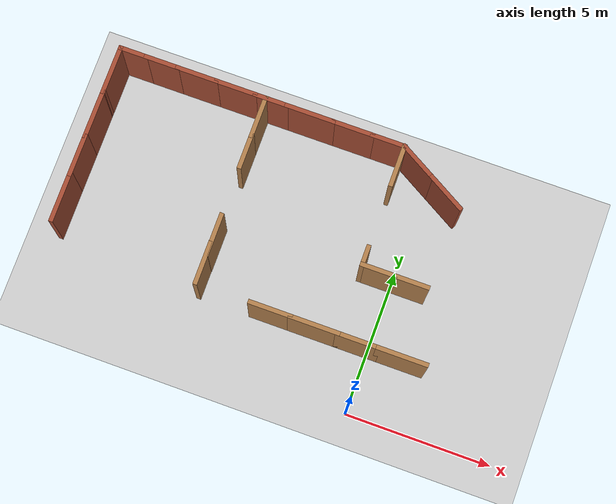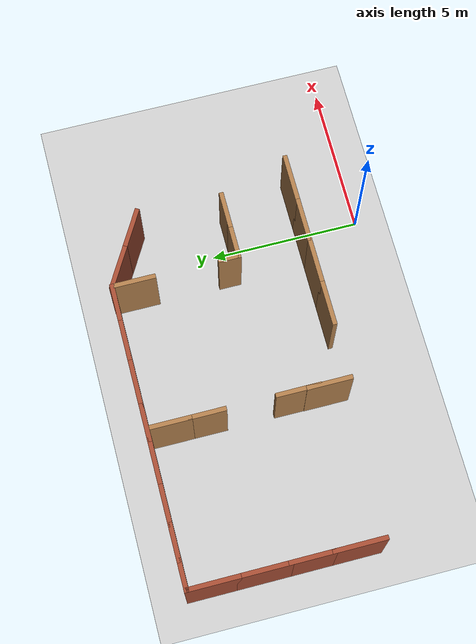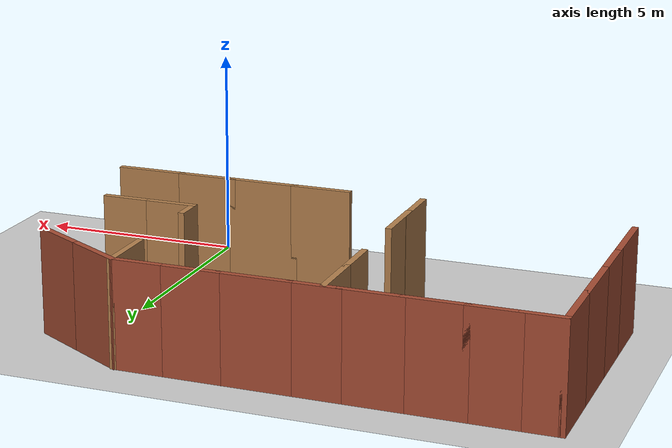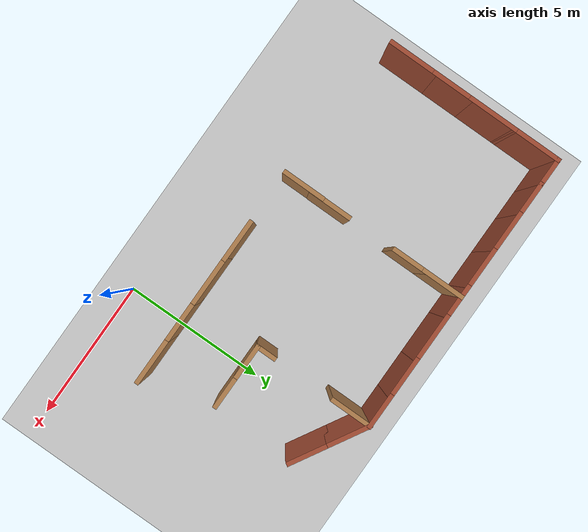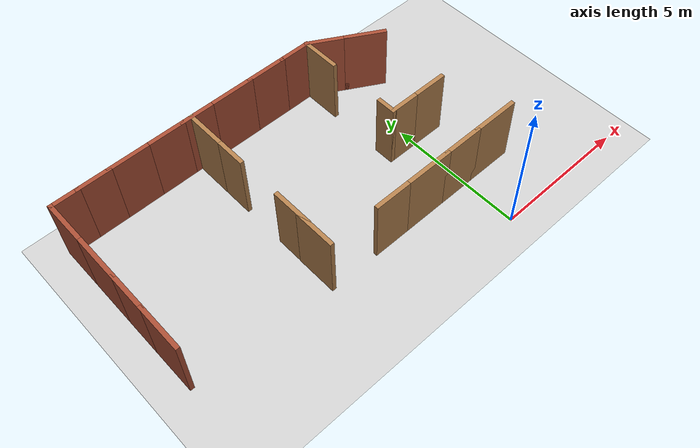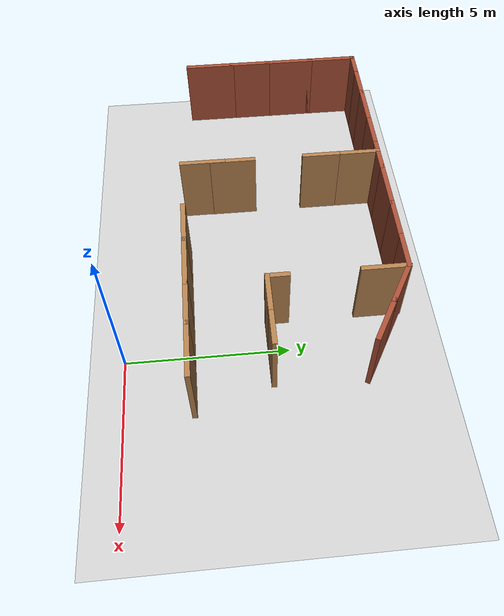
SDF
<sdf version="1.7">
 <world name="default">
  <model name="ground_plane">
   <static>1</static>
   <link name="link">
    <collision name="collision">
     <geometry><plane><normal>0 0 1</normal><size>100 100</size></plane></geometry>
     <surface>
      <contact><collide_bitmask>65535</collide_bitmask></contact>
      <friction><ode><mu>100</mu><mu2>50</mu2></ode></friction>
     </surface>
    </collision>
    <visual name="visual">
     <cast_shadows>0</cast_shadows>
     <geometry><plane><normal>0 0 1</normal><size>100 100</size></plane></geometry>
     <material>
      <script><uri>file://media/materials/scripts/gazebo.material</uri><name>Gazebo/Grey</name></script>
     </material>
    </visual>
   </link>
  </model>
  <model name="Building">
   <link name="Wall_102">
    <pose>-6.17365 7.40796 0 0 0 -1.5708</pose>
    <visual name="Wall_102_Visual">
     <pose>0 0 1.25 0 -0 0</pose>
     <geometry><box><size>1.5 0.15 2.5</size></box></geometry>
     <material>
      <script><uri>file://media/materials/scripts/gazebo.material</uri><name>Gazebo/Wood</name></script>
      <ambient>1 1 1 1</ambient>
      <shader type="pixel"/>
     </material>
     <meta><layer>0</layer></meta>
    </visual>
    <collision name="Wall_102_Collision">
     <pose>0 0 1.25 0 -0 0</pose>
     <geometry><box><size>1.5 0.15 2.5</size></box></geometry>
     <surface>
      <friction>
       <ode><mu>1</mu><mu2>1</mu2><fdir1>0 0 0</fdir1><slip1>0</slip1><slip2>0</slip2></ode>
       <torsional>
        <coefficient>1</coefficient>
        <patch_radius>0</patch_radius>
        <surface_radius>0</surface_radius>
        <use_patch_radius>1</use_patch_radius>
        <ode><slip>0</slip></ode>
       </torsional>
      </friction>
      <bounce><restitution_coefficient>0</restitution_coefficient><threshold>1e+06</threshold></bounce>
      <contact>
       <collide_without_contact>0</collide_without_contact>
       <collide_without_contact_bitmask>1</collide_without_contact_bitmask>
       <collide_bitmask>1</collide_bitmask>
       <ode>
        <soft_cfm>0</soft_cfm>
        <soft_erp>0.2</soft_erp>
        <kp>1e+13</kp>
        <kd>1</kd>
        <max_vel>0.01</max_vel>
        <min_depth>0</min_depth>
       </ode>
       <bullet>
        <split_impulse>1</split_impulse>
        <split_impulse_penetration_threshold>-0.01</split_impulse_penetration_threshold>
        <soft_cfm>0</soft_cfm>
        <soft_erp>0.2</soft_erp>
        <kp>1e+13</kp>
        <kd>1</kd>
       </bullet>
      </contact>
     </surface>
    </collision>
   </link>
   <link name="Wall_103">
    <pose>-6.17365 6.18296 0 0 0 -1.5708</pose>
    <visual name="Wall_103_Visual">
     <pose>0 0 1.25 0 -0 0</pose>
     <geometry><box><size>1.25 0.15 2.5</size></box></geometry>
     <material>
      <script><uri>file://media/materials/scripts/gazebo.material</uri><name>Gazebo/Wood</name></script>
      <ambient>1 1 1 1</ambient>
      <shader type="pixel"/>
     </material>
     <meta><layer>0</layer></meta>
    </visual>
    <collision name="Wall_103_Collision">
     <pose>0 0 1.25 0 -0 0</pose>
     <geometry><box><size>1.25 0.15 2.5</size></box></geometry>
     <surface>
      <friction>
       <ode><mu>1</mu><mu2>1</mu2><fdir1>0 0 0</fdir1><slip1>0</slip1><slip2>0</slip2></ode>
       <torsional>
        <coefficient>1</coefficient>
        <patch_radius>0</patch_radius>
        <surface_radius>0</surface_radius>
        <use_patch_radius>1</use_patch_radius>
        <ode><slip>0</slip></ode>
       </torsional>
      </friction>
      <bounce><restitution_coefficient>0</restitution_coefficient><threshold>1e+06</threshold></bounce>
      <contact>
       <collide_without_contact>0</collide_without_contact>
       <collide_without_contact_bitmask>1</collide_without_contact_bitmask>
       <collide_bitmask>1</collide_bitmask>
       <ode>
        <soft_cfm>0</soft_cfm>
        <soft_erp>0.2</soft_erp>
        <kp>1e+13</kp>
        <kd>1</kd>
        <max_vel>0.01</max_vel>
        <min_depth>0</min_depth>
       </ode>
       <bullet>
        <split_impulse>1</split_impulse>
        <split_impulse_penetration_threshold>-0.01</split_impulse_penetration_threshold>
        <soft_cfm>0</soft_cfm>
        <soft_erp>0.2</soft_erp>
        <kp>1e+13</kp>
        <kd>1</kd>
       </bullet>
      </contact>
     </surface>
    </collision>
   </link>
   <link name="Wall_106">
    <pose>-6.17365 2.25796 0 0 0 -1.5708</pose>
    <visual name="Wall_106_Visual">
     <pose>0 0 1.25 0 -0 0</pose>
     <geometry><box><size>1.5 0.15 2.5</size></box></geometry>
     <material>
      <script><uri>file://media/materials/scripts/gazebo.material</uri><name>Gazebo/Wood</name></script>
      <ambient>1 1 1 1</ambient>
      <shader type="pixel"/>
     </material>
     <meta><layer>0</layer></meta>
    </visual>
    <collision name="Wall_106_Collision">
     <pose>0 0 1.25 0 -0 0</pose>
     <geometry><box><size>1.5 0.15 2.5</size></box></geometry>
     <surface>
      <friction>
       <ode><mu>1</mu><mu2>1</mu2><fdir1>0 0 0</fdir1><slip1>0</slip1><slip2>0</slip2></ode>
       <torsional>
        <coefficient>1</coefficient>
        <patch_radius>0</patch_radius>
        <surface_radius>0</surface_radius>
        <use_patch_radius>1</use_patch_radius>
        <ode><slip>0</slip></ode>
       </torsional>
      </friction>
      <bounce><restitution_coefficient>0</restitution_coefficient><threshold>1e+06</threshold></bounce>
      <contact>
       <collide_without_contact>0</collide_without_contact>
       <collide_without_contact_bitmask>1</collide_without_contact_bitmask>
       <collide_bitmask>1</collide_bitmask>
       <ode>
        <soft_cfm>0</soft_cfm>
        <soft_erp>0.2</soft_erp>
        <kp>1e+13</kp>
        <kd>1</kd>
        <max_vel>0.01</max_vel>
        <min_depth>0</min_depth>
       </ode>
       <bullet>
        <split_impulse>1</split_impulse>
        <split_impulse_penetration_threshold>-0.01</split_impulse_penetration_threshold>
        <soft_cfm>0</soft_cfm>
        <soft_erp>0.2</soft_erp>
        <kp>1e+13</kp>
        <kd>1</kd>
       </bullet>
      </contact>
     </surface>
    </collision>
   </link>
   <link name="Wall_106_clone">
    <pose>-6.16432 3.24691 0 0 0 -1.5708</pose>
    <visual name="Wall_106_Visual">
     <pose>0 0 1.25 0 -0 0</pose>
     <geometry><box><size>1.5 0.15 2.5</size></box></geometry>
     <material>
      <script><uri>file://media/materials/scripts/gazebo.material</uri><name>Gazebo/Wood</name></script>
      <ambient>1 1 1 1</ambient>
      <shader type="pixel"/>
     </material>
     <meta><layer>0</layer></meta>
    </visual>
    <collision name="Wall_106_Collision">
     <pose>0 0 1.25 0 -0 0</pose>
     <geometry><box><size>1.5 0.15 2.5</size></box></geometry>
     <surface>
      <friction>
       <ode><mu>1</mu><mu2>1</mu2><fdir1>0 0 0</fdir1><slip1>0</slip1><slip2>0</slip2></ode>
       <torsional>
        <coefficient>1</coefficient>
        <patch_radius>0</patch_radius>
        <surface_radius>0</surface_radius>
        <use_patch_radius>1</use_patch_radius>
        <ode><slip>0</slip></ode>
       </torsional>
      </friction>
      <bounce><restitution_coefficient>0</restitution_coefficient><threshold>1e+06</threshold></bounce>
      <contact>
       <collide_without_contact>0</collide_without_contact>
       <collide_without_contact_bitmask>1</collide_without_contact_bitmask>
       <collide_bitmask>1</collide_bitmask>
       <ode>
        <soft_cfm>0</soft_cfm>
        <soft_erp>0.2</soft_erp>
        <kp>1e+13</kp>
        <kd>1</kd>
        <max_vel>0.01</max_vel>
        <min_depth>0</min_depth>
       </ode>
       <bullet>
        <split_impulse>1</split_impulse>
        <split_impulse_penetration_threshold>-0.01</split_impulse_penetration_threshold>
        <soft_cfm>0</soft_cfm>
        <soft_erp>0.2</soft_erp>
        <kp>1e+13</kp>
        <kd>1</kd>
       </bullet>
      </contact>
     </surface>
    </collision>
   </link>
   <link name="Wall_108">
    <pose>-3.64865 1.58296 0 0 -0 0</pose>
    <visual name="Wall_108_Visual">
     <pose>0 0 1.25 0 -0 0</pose>
     <geometry><box><size>1.5 0.15 2.5</size></box></geometry>
     <material>
      <script><uri>file://media/materials/scripts/gazebo.material</uri><name>Gazebo/Wood</name></script>
      <ambient>1 1 1 1</ambient>
      <shader type="pixel"/>
     </material>
     <meta><layer>0</layer></meta>
    </visual>
    <collision name="Wall_108_Collision">
     <pose>0 0 1.25 0 -0 0</pose>
     <geometry><box><size>1.5 0.15 2.5</size></box></geometry>
     <surface>
      <friction>
       <ode><mu>1</mu><mu2>1</mu2><fdir1>0 0 0</fdir1><slip1>0</slip1><slip2>0</slip2></ode>
       <torsional>
        <coefficient>1</coefficient>
        <patch_radius>0</patch_radius>
        <surface_radius>0</surface_radius>
        <use_patch_radius>1</use_patch_radius>
        <ode><slip>0</slip></ode>
       </torsional>
      </friction>
      <bounce><restitution_coefficient>0</restitution_coefficient><threshold>1e+06</threshold></bounce>
      <contact>
       <collide_without_contact>0</collide_without_contact>
       <collide_without_contact_bitmask>1</collide_without_contact_bitmask>
       <collide_bitmask>1</collide_bitmask>
       <ode>
        <soft_cfm>0</soft_cfm>
        <soft_erp>0.2</soft_erp>
        <kp>1e+13</kp>
        <kd>1</kd>
        <max_vel>0.01</max_vel>
        <min_depth>0</min_depth>
       </ode>
       <bullet>
        <split_impulse>1</split_impulse>
        <split_impulse_penetration_threshold>-0.01</split_impulse_penetration_threshold>
        <soft_cfm>0</soft_cfm>
        <soft_erp>0.2</soft_erp>
        <kp>1e+13</kp>
        <kd>1</kd>
       </bullet>
      </contact>
     </surface>
    </collision>
   </link>
   <link name="Wall_109">
    <pose>-2.17365 1.58296 0 0 -0 0</pose>
    <visual name="Wall_109_Visual">
     <pose>0 0 1.25 0 -0 0</pose>
     <geometry><box><size>1.75 0.15 2.5</size></box></geometry>
     <material>
      <script><uri>file://media/materials/scripts/gazebo.material</uri><name>Gazebo/Wood</name></script>
      <ambient>1 1 1 1</ambient>
      <shader type="pixel"/>
     </material>
     <meta><layer>0</layer></meta>
    </visual>
    <collision name="Wall_109_Collision">
     <pose>0 0 1.25 0 -0 0</pose>
     <geometry><box><size>1.75 0.15 2.5</size></box></geometry>
     <surface>
      <friction>
       <ode><mu>1</mu><mu2>1</mu2><fdir1>0 0 0</fdir1><slip1>0</slip1><slip2>0</slip2></ode>
       <torsional>
        <coefficient>1</coefficient>
        <patch_radius>0</patch_radius>
        <surface_radius>0</surface_radius>
        <use_patch_radius>1</use_patch_radius>
        <ode><slip>0</slip></ode>
       </torsional>
      </friction>
      <bounce><restitution_coefficient>0</restitution_coefficient><threshold>1e+06</threshold></bounce>
      <contact>
       <collide_without_contact>0</collide_without_contact>
       <collide_without_contact_bitmask>1</collide_without_contact_bitmask>
       <collide_bitmask>1</collide_bitmask>
       <ode>
        <soft_cfm>0</soft_cfm>
        <soft_erp>0.2</soft_erp>
        <kp>1e+13</kp>
        <kd>1</kd>
        <max_vel>0.01</max_vel>
        <min_depth>0</min_depth>
       </ode>
       <bullet>
        <split_impulse>1</split_impulse>
        <split_impulse_penetration_threshold>-0.01</split_impulse_penetration_threshold>
        <soft_cfm>0</soft_cfm>
        <soft_erp>0.2</soft_erp>
        <kp>1e+13</kp>
        <kd>1</kd>
       </bullet>
      </contact>
     </surface>
    </collision>
   </link>
   <link name="Wall_110">
    <pose>-0.698653 1.58296 0 0 -0 0</pose>
    <visual name="Wall_110_Visual">
     <pose>0 0 1.25 0 -0 0</pose>
     <geometry><box><size>1.5 0.15 2.5</size></box></geometry>
     <material>
      <script><uri>file://media/materials/scripts/gazebo.material</uri><name>Gazebo/Wood</name></script>
      <ambient>1 1 1 1</ambient>
      <shader type="pixel"/>
     </material>
     <meta><layer>0</layer></meta>
    </visual>
    <collision name="Wall_110_Collision">
     <pose>0 0 1.25 0 -0 0</pose>
     <geometry><box><size>1.5 0.15 2.5</size></box></geometry>
     <surface>
      <friction>
       <ode><mu>1</mu><mu2>1</mu2><fdir1>0 0 0</fdir1><slip1>0</slip1><slip2>0</slip2></ode>
       <torsional>
        <coefficient>1</coefficient>
        <patch_radius>0</patch_radius>
        <surface_radius>0</surface_radius>
        <use_patch_radius>1</use_patch_radius>
        <ode><slip>0</slip></ode>
       </torsional>
      </friction>
      <bounce><restitution_coefficient>0</restitution_coefficient><threshold>1e+06</threshold></bounce>
      <contact>
       <collide_without_contact>0</collide_without_contact>
       <collide_without_contact_bitmask>1</collide_without_contact_bitmask>
       <collide_bitmask>1</collide_bitmask>
       <ode>
        <soft_cfm>0</soft_cfm>
        <soft_erp>0.2</soft_erp>
        <kp>1e+13</kp>
        <kd>1</kd>
        <max_vel>0.01</max_vel>
        <min_depth>0</min_depth>
       </ode>
       <bullet>
        <split_impulse>1</split_impulse>
        <split_impulse_penetration_threshold>-0.01</split_impulse_penetration_threshold>
        <soft_cfm>0</soft_cfm>
        <soft_erp>0.2</soft_erp>
        <kp>1e+13</kp>
        <kd>1</kd>
       </bullet>
      </contact>
     </surface>
    </collision>
   </link>
   <link name="Wall_113">
    <pose>0.776346 1.58296 0 0 -0 0</pose>
    <visual name="Wall_113_Visual">
     <pose>0 0 1.25 0 -0 0</pose>
     <geometry><box><size>1.75 0.15 2.5</size></box></geometry>
     <material>
      <script><uri>file://media/materials/scripts/gazebo.material</uri><name>Gazebo/Wood</name></script>
      <ambient>1 1 1 1</ambient>
      <shader type="pixel"/>
     </material>
     <meta><layer>0</layer></meta>
    </visual>
    <collision name="Wall_113_Collision">
     <pose>0 0 1.25 0 -0 0</pose>
     <geometry><box><size>1.75 0.15 2.5</size></box></geometry>
     <surface>
      <friction>
       <ode><mu>1</mu><mu2>1</mu2><fdir1>0 0 0</fdir1><slip1>0</slip1><slip2>0</slip2></ode>
       <torsional>
        <coefficient>1</coefficient>
        <patch_radius>0</patch_radius>
        <surface_radius>0</surface_radius>
        <use_patch_radius>1</use_patch_radius>
        <ode><slip>0</slip></ode>
       </torsional>
      </friction>
      <bounce><restitution_coefficient>0</restitution_coefficient><threshold>1e+06</threshold></bounce>
      <contact>
       <collide_without_contact>0</collide_without_contact>
       <collide_without_contact_bitmask>1</collide_without_contact_bitmask>
       <collide_bitmask>1</collide_bitmask>
       <ode>
        <soft_cfm>0</soft_cfm>
        <soft_erp>0.2</soft_erp>
        <kp>1e+13</kp>
        <kd>1</kd>
        <max_vel>0.01</max_vel>
        <min_depth>0</min_depth>
       </ode>
       <bullet>
        <split_impulse>1</split_impulse>
        <split_impulse_penetration_threshold>-0.01</split_impulse_penetration_threshold>
        <soft_cfm>0</soft_cfm>
        <soft_erp>0.2</soft_erp>
        <kp>1e+13</kp>
        <kd>1</kd>
       </bullet>
      </contact>
     </surface>
    </collision>
   </link>
   <link name="Wall_13">
    <pose>-11.236 5.68627 0 0 0 -1.5708</pose>
    <visual name="Wall_13_Visual">
     <pose>0 0 1.25 0 -0 0</pose>
     <geometry><box><size>1.75 0.15 2.5</size></box></geometry>
     <material>
      <script><uri>file://media/materials/scripts/gazebo.material</uri><name>Gazebo/Bricks</name></script>
      <ambient>1 1 1 1</ambient>
      <shader type="pixel"/>
     </material>
     <meta><layer>0</layer></meta>
    </visual>
    <collision name="Wall_13_Collision">
     <pose>0 0 1.25 0 -0 0</pose>
     <geometry><box><size>1.75 0.15 2.5</size></box></geometry>
     <surface>
      <friction>
       <ode><mu>1</mu><mu2>1</mu2><fdir1>0 0 0</fdir1><slip1>0</slip1><slip2>0</slip2></ode>
       <torsional>
        <coefficient>1</coefficient>
        <patch_radius>0</patch_radius>
        <surface_radius>0</surface_radius>
        <use_patch_radius>1</use_patch_radius>
        <ode><slip>0</slip></ode>
       </torsional>
      </friction>
      <bounce><restitution_coefficient>0</restitution_coefficient><threshold>1e+06</threshold></bounce>
      <contact>
       <collide_without_contact>0</collide_without_contact>
       <collide_without_contact_bitmask>1</collide_without_contact_bitmask>
       <collide_bitmask>1</collide_bitmask>
       <ode>
        <soft_cfm>0</soft_cfm>
        <soft_erp>0.2</soft_erp>
        <kp>1e+13</kp>
        <kd>1</kd>
        <max_vel>0.01</max_vel>
        <min_depth>0</min_depth>
       </ode>
       <bullet>
        <split_impulse>1</split_impulse>
        <split_impulse_penetration_threshold>-0.01</split_impulse_penetration_threshold>
        <soft_cfm>0</soft_cfm>
        <soft_erp>0.2</soft_erp>
        <kp>1e+13</kp>
        <kd>1</kd>
       </bullet>
      </contact>
     </surface>
    </collision>
   </link>
   <link name="Wall_14">
    <pose>-11.236 4.21127 0 0 0 -1.5708</pose>
    <visual name="Wall_14_Visual">
     <pose>0 0 1.25 0 -0 0</pose>
     <geometry><box><size>1.5 0.15 2.5</size></box></geometry>
     <material>
      <script><uri>file://media/materials/scripts/gazebo.material</uri><name>Gazebo/Bricks</name></script>
      <ambient>1 1 1 1</ambient>
      <shader type="pixel"/>
     </material>
     <meta><layer>0</layer></meta>
    </visual>
    <collision name="Wall_14_Collision">
     <pose>0 0 1.25 0 -0 0</pose>
     <geometry><box><size>1.5 0.15 2.5</size></box></geometry>
     <surface>
      <friction>
       <ode><mu>1</mu><mu2>1</mu2><fdir1>0 0 0</fdir1><slip1>0</slip1><slip2>0</slip2></ode>
       <torsional>
        <coefficient>1</coefficient>
        <patch_radius>0</patch_radius>
        <surface_radius>0</surface_radius>
        <use_patch_radius>1</use_patch_radius>
        <ode><slip>0</slip></ode>
       </torsional>
      </friction>
      <bounce><restitution_coefficient>0</restitution_coefficient><threshold>1e+06</threshold></bounce>
      <contact>
       <collide_without_contact>0</collide_without_contact>
       <collide_without_contact_bitmask>1</collide_without_contact_bitmask>
       <collide_bitmask>1</collide_bitmask>
       <ode>
        <soft_cfm>0</soft_cfm>
        <soft_erp>0.2</soft_erp>
        <kp>1e+13</kp>
        <kd>1</kd>
        <max_vel>0.01</max_vel>
        <min_depth>0</min_depth>
       </ode>
       <bullet>
        <split_impulse>1</split_impulse>
        <split_impulse_penetration_threshold>-0.01</split_impulse_penetration_threshold>
        <soft_cfm>0</soft_cfm>
        <soft_erp>0.2</soft_erp>
        <kp>1e+13</kp>
        <kd>1</kd>
       </bullet>
      </contact>
     </surface>
    </collision>
   </link>
   <link name="Wall_15">
    <pose>-11.236 2.73627 0 0 0 -1.5708</pose>
    <visual name="Wall_15_Visual">
     <pose>0 0 1.25 0 -0 0</pose>
     <geometry><box><size>1.75 0.15 2.5</size></box></geometry>
     <material>
      <script><uri>file://media/materials/scripts/gazebo.material</uri><name>Gazebo/Bricks</name></script>
      <ambient>1 1 1 1</ambient>
      <shader type="pixel"/>
     </material>
     <meta><layer>0</layer></meta>
    </visual>
    <collision name="Wall_15_Collision">
     <pose>0 0 1.25 0 -0 0</pose>
     <geometry><box><size>1.75 0.15 2.5</size></box></geometry>
     <surface>
      <friction>
       <ode><mu>1</mu><mu2>1</mu2><fdir1>0 0 0</fdir1><slip1>0</slip1><slip2>0</slip2></ode>
       <torsional>
        <coefficient>1</coefficient>
        <patch_radius>0</patch_radius>
        <surface_radius>0</surface_radius>
        <use_patch_radius>1</use_patch_radius>
        <ode><slip>0</slip></ode>
       </torsional>
      </friction>
      <bounce><restitution_coefficient>0</restitution_coefficient><threshold>1e+06</threshold></bounce>
      <contact>
       <collide_without_contact>0</collide_without_contact>
       <collide_without_contact_bitmask>1</collide_without_contact_bitmask>
       <collide_bitmask>1</collide_bitmask>
       <ode>
        <soft_cfm>0</soft_cfm>
        <soft_erp>0.2</soft_erp>
        <kp>1e+13</kp>
        <kd>1</kd>
        <max_vel>0.01</max_vel>
        <min_depth>0</min_depth>
       </ode>
       <bullet>
        <split_impulse>1</split_impulse>
        <split_impulse_penetration_threshold>-0.01</split_impulse_penetration_threshold>
        <soft_cfm>0</soft_cfm>
        <soft_erp>0.2</soft_erp>
        <kp>1e+13</kp>
        <kd>1</kd>
       </bullet>
      </contact>
     </surface>
    </collision>
   </link>
   <link name="Wall_56">
    <pose>-1.93596 8.08627 0 0 -0 3.14159</pose>
    <visual name="Wall_56_Visual">
     <pose>0 0 1.25 0 -0 0</pose>
     <geometry><box><size>1.25 0.15 2.5</size></box></geometry>
     <material>
      <script><uri>file://media/materials/scripts/gazebo.material</uri><name>Gazebo/Bricks</name></script>
      <ambient>1 1 1 1</ambient>
      <shader type="pixel"/>
     </material>
     <meta><layer>0</layer></meta>
    </visual>
    <collision name="Wall_56_Collision">
     <pose>0 0 1.25 0 -0 0</pose>
     <geometry><box><size>1.25 0.15 2.5</size></box></geometry>
     <surface>
      <friction>
       <ode><mu>1</mu><mu2>1</mu2><fdir1>0 0 0</fdir1><slip1>0</slip1><slip2>0</slip2></ode>
       <torsional>
        <coefficient>1</coefficient>
        <patch_radius>0</patch_radius>
        <surface_radius>0</surface_radius>
        <use_patch_radius>1</use_patch_radius>
        <ode><slip>0</slip></ode>
       </torsional>
      </friction>
      <bounce><restitution_coefficient>0</restitution_coefficient><threshold>1e+06</threshold></bounce>
      <contact>
       <collide_without_contact>0</collide_without_contact>
       <collide_without_contact_bitmask>1</collide_without_contact_bitmask>
       <collide_bitmask>1</collide_bitmask>
       <ode>
        <soft_cfm>0</soft_cfm>
        <soft_erp>0.2</soft_erp>
        <kp>1e+13</kp>
        <kd>1</kd>
        <max_vel>0.01</max_vel>
        <min_depth>0</min_depth>
       </ode>
       <bullet>
        <split_impulse>1</split_impulse>
        <split_impulse_penetration_threshold>-0.01</split_impulse_penetration_threshold>
        <soft_cfm>0</soft_cfm>
        <soft_erp>0.2</soft_erp>
        <kp>1e+13</kp>
        <kd>1</kd>
       </bullet>
      </contact>
     </surface>
    </collision>
   </link>
   <link name="Wall_57">
    <pose>-3.16096 8.08627 0 0 -0 3.14159</pose>
    <visual name="Wall_57_Visual">
     <pose>0 0 1.25 0 -0 0</pose>
     <geometry><box><size>1.5 0.15 2.5</size></box></geometry>
     <material>
      <script><uri>file://media/materials/scripts/gazebo.material</uri><name>Gazebo/Bricks</name></script>
      <ambient>1 1 1 1</ambient>
      <shader type="pixel"/>
     </material>
     <meta><layer>0</layer></meta>
    </visual>
    <collision name="Wall_57_Collision">
     <pose>0 0 1.25 0 -0 0</pose>
     <geometry><box><size>1.5 0.15 2.5</size></box></geometry>
     <surface>
      <friction>
       <ode><mu>1</mu><mu2>1</mu2><fdir1>0 0 0</fdir1><slip1>0</slip1><slip2>0</slip2></ode>
       <torsional>
        <coefficient>1</coefficient>
        <patch_radius>0</patch_radius>
        <surface_radius>0</surface_radius>
        <use_patch_radius>1</use_patch_radius>
        <ode><slip>0</slip></ode>
       </torsional>
      </friction>
      <bounce><restitution_coefficient>0</restitution_coefficient><threshold>1e+06</threshold></bounce>
      <contact>
       <collide_without_contact>0</collide_without_contact>
       <collide_without_contact_bitmask>1</collide_without_contact_bitmask>
       <collide_bitmask>1</collide_bitmask>
       <ode>
        <soft_cfm>0</soft_cfm>
        <soft_erp>0.2</soft_erp>
        <kp>1e+13</kp>
        <kd>1</kd>
        <max_vel>0.01</max_vel>
        <min_depth>0</min_depth>
       </ode>
       <bullet>
        <split_impulse>1</split_impulse>
        <split_impulse_penetration_threshold>-0.01</split_impulse_penetration_threshold>
        <soft_cfm>0</soft_cfm>
        <soft_erp>0.2</soft_erp>
        <kp>1e+13</kp>
        <kd>1</kd>
       </bullet>
      </contact>
     </surface>
    </collision>
   </link>
   <link name="Wall_58">
    <pose>-4.63596 8.08627 0 0 -0 3.14159</pose>
    <visual name="Wall_58_Visual">
     <pose>0 0 1.25 0 -0 0</pose>
     <geometry><box><size>1.75 0.15 2.5</size></box></geometry>
     <material>
      <script><uri>file://media/materials/scripts/gazebo.material</uri><name>Gazebo/Bricks</name></script>
      <ambient>1 1 1 1</ambient>
      <shader type="pixel"/>
     </material>
     <meta><layer>0</layer></meta>
    </visual>
    <collision name="Wall_58_Collision">
     <pose>0 0 1.25 0 -0 0</pose>
     <geometry><box><size>1.75 0.15 2.5</size></box></geometry>
     <surface>
      <friction>
       <ode><mu>1</mu><mu2>1</mu2><fdir1>0 0 0</fdir1><slip1>0</slip1><slip2>0</slip2></ode>
       <torsional>
        <coefficient>1</coefficient>
        <patch_radius>0</patch_radius>
        <surface_radius>0</surface_radius>
        <use_patch_radius>1</use_patch_radius>
        <ode><slip>0</slip></ode>
       </torsional>
      </friction>
      <bounce><restitution_coefficient>0</restitution_coefficient><threshold>1e+06</threshold></bounce>
      <contact>
       <collide_without_contact>0</collide_without_contact>
       <collide_without_contact_bitmask>1</collide_without_contact_bitmask>
       <collide_bitmask>1</collide_bitmask>
       <ode>
        <soft_cfm>0</soft_cfm>
        <soft_erp>0.2</soft_erp>
        <kp>1e+13</kp>
        <kd>1</kd>
        <max_vel>0.01</max_vel>
        <min_depth>0</min_depth>
       </ode>
       <bullet>
        <split_impulse>1</split_impulse>
        <split_impulse_penetration_threshold>-0.01</split_impulse_penetration_threshold>
        <soft_cfm>0</soft_cfm>
        <soft_erp>0.2</soft_erp>
        <kp>1e+13</kp>
        <kd>1</kd>
       </bullet>
      </contact>
     </surface>
    </collision>
   </link>
   <link name="Wall_59">
    <pose>-5.98596 8.08627 0 0 -0 3.14159</pose>
    <visual name="Wall_59_Visual">
     <pose>0 0 1.25 0 -0 0</pose>
     <geometry><box><size>1.25 0.15 2.5</size></box></geometry>
     <material>
      <script><uri>file://media/materials/scripts/gazebo.material</uri><name>Gazebo/Bricks</name></script>
      <ambient>1 1 1 1</ambient>
      <shader type="pixel"/>
     </material>
     <meta><layer>0</layer></meta>
    </visual>
    <collision name="Wall_59_Collision">
     <pose>0 0 1.25 0 -0 0</pose>
     <geometry><box><size>1.25 0.15 2.5</size></box></geometry>
     <surface>
      <friction>
       <ode><mu>1</mu><mu2>1</mu2><fdir1>0 0 0</fdir1><slip1>0</slip1><slip2>0</slip2></ode>
       <torsional>
        <coefficient>1</coefficient>
        <patch_radius>0</patch_radius>
        <surface_radius>0</surface_radius>
        <use_patch_radius>1</use_patch_radius>
        <ode><slip>0</slip></ode>
       </torsional>
      </friction>
      <bounce><restitution_coefficient>0</restitution_coefficient><threshold>1e+06</threshold></bounce>
      <contact>
       <collide_without_contact>0</collide_without_contact>
       <collide_without_contact_bitmask>1</collide_without_contact_bitmask>
       <collide_bitmask>1</collide_bitmask>
       <ode>
        <soft_cfm>0</soft_cfm>
        <soft_erp>0.2</soft_erp>
        <kp>1e+13</kp>
        <kd>1</kd>
        <max_vel>0.01</max_vel>
        <min_depth>0</min_depth>
       </ode>
       <bullet>
        <split_impulse>1</split_impulse>
        <split_impulse_penetration_threshold>-0.01</split_impulse_penetration_threshold>
        <soft_cfm>0</soft_cfm>
        <soft_erp>0.2</soft_erp>
        <kp>1e+13</kp>
        <kd>1</kd>
       </bullet>
      </contact>
     </surface>
    </collision>
   </link>
   <link name="Wall_60">
    <pose>-7.21096 8.08627 0 0 -0 3.14159</pose>
    <visual name="Wall_60_Visual">
     <pose>0 0 1.25 0 -0 0</pose>
     <geometry><box><size>1.5 0.15 2.5</size></box></geometry>
     <material>
      <script><uri>file://media/materials/scripts/gazebo.material</uri><name>Gazebo/Bricks</name></script>
      <ambient>1 1 1 1</ambient>
      <shader type="pixel"/>
     </material>
     <meta><layer>0</layer></meta>
    </visual>
    <collision name="Wall_60_Collision">
     <pose>0 0 1.25 0 -0 0</pose>
     <geometry><box><size>1.5 0.15 2.5</size></box></geometry>
     <surface>
      <friction>
       <ode><mu>1</mu><mu2>1</mu2><fdir1>0 0 0</fdir1><slip1>0</slip1><slip2>0</slip2></ode>
       <torsional>
        <coefficient>1</coefficient>
        <patch_radius>0</patch_radius>
        <surface_radius>0</surface_radius>
        <use_patch_radius>1</use_patch_radius>
        <ode><slip>0</slip></ode>
       </torsional>
      </friction>
      <bounce><restitution_coefficient>0</restitution_coefficient><threshold>1e+06</threshold></bounce>
      <contact>
       <collide_without_contact>0</collide_without_contact>
       <collide_without_contact_bitmask>1</collide_without_contact_bitmask>
       <collide_bitmask>1</collide_bitmask>
       <ode>
        <soft_cfm>0</soft_cfm>
        <soft_erp>0.2</soft_erp>
        <kp>1e+13</kp>
        <kd>1</kd>
        <max_vel>0.01</max_vel>
        <min_depth>0</min_depth>
       </ode>
       <bullet>
        <split_impulse>1</split_impulse>
        <split_impulse_penetration_threshold>-0.01</split_impulse_penetration_threshold>
        <soft_cfm>0</soft_cfm>
        <soft_erp>0.2</soft_erp>
        <kp>1e+13</kp>
        <kd>1</kd>
       </bullet>
      </contact>
     </surface>
    </collision>
   </link>
   <link name="Wall_61">
    <pose>-8.56096 8.08627 0 0 -0 3.14159</pose>
    <visual name="Wall_61_Visual">
     <pose>0 0 1.25 0 -0 0</pose>
     <geometry><box><size>1.5 0.15 2.5</size></box></geometry>
     <material>
      <script><uri>file://media/materials/scripts/gazebo.material</uri><name>Gazebo/Bricks</name></script>
      <ambient>1 1 1 1</ambient>
      <shader type="pixel"/>
     </material>
     <meta><layer>0</layer></meta>
    </visual>
    <collision name="Wall_61_Collision">
     <pose>0 0 1.25 0 -0 0</pose>
     <geometry><box><size>1.5 0.15 2.5</size></box></geometry>
     <surface>
      <friction>
       <ode><mu>1</mu><mu2>1</mu2><fdir1>0 0 0</fdir1><slip1>0</slip1><slip2>0</slip2></ode>
       <torsional>
        <coefficient>1</coefficient>
        <patch_radius>0</patch_radius>
        <surface_radius>0</surface_radius>
        <use_patch_radius>1</use_patch_radius>
        <ode><slip>0</slip></ode>
       </torsional>
      </friction>
      <bounce><restitution_coefficient>0</restitution_coefficient><threshold>1e+06</threshold></bounce>
      <contact>
       <collide_without_contact>0</collide_without_contact>
       <collide_without_contact_bitmask>1</collide_without_contact_bitmask>
       <collide_bitmask>1</collide_bitmask>
       <ode>
        <soft_cfm>0</soft_cfm>
        <soft_erp>0.2</soft_erp>
        <kp>1e+13</kp>
        <kd>1</kd>
        <max_vel>0.01</max_vel>
        <min_depth>0</min_depth>
       </ode>
       <bullet>
        <split_impulse>1</split_impulse>
        <split_impulse_penetration_threshold>-0.01</split_impulse_penetration_threshold>
        <soft_cfm>0</soft_cfm>
        <soft_erp>0.2</soft_erp>
        <kp>1e+13</kp>
        <kd>1</kd>
       </bullet>
      </contact>
     </surface>
    </collision>
   </link>
   <link name="Wall_62">
    <pose>-9.78596 8.08627 0 0 -0 3.14159</pose>
    <visual name="Wall_62_Visual">
     <pose>0 0 1.25 0 -0 0</pose>
     <geometry><box><size>1.25 0.15 2.5</size></box></geometry>
     <material>
      <script><uri>file://media/materials/scripts/gazebo.material</uri><name>Gazebo/Bricks</name></script>
      <ambient>1 1 1 1</ambient>
      <shader type="pixel"/>
     </material>
     <meta><layer>0</layer></meta>
    </visual>
    <collision name="Wall_62_Collision">
     <pose>0 0 1.25 0 -0 0</pose>
     <geometry><box><size>1.25 0.15 2.5</size></box></geometry>
     <surface>
      <friction>
       <ode><mu>1</mu><mu2>1</mu2><fdir1>0 0 0</fdir1><slip1>0</slip1><slip2>0</slip2></ode>
       <torsional>
        <coefficient>1</coefficient>
        <patch_radius>0</patch_radius>
        <surface_radius>0</surface_radius>
        <use_patch_radius>1</use_patch_radius>
        <ode><slip>0</slip></ode>
       </torsional>
      </friction>
      <bounce><restitution_coefficient>0</restitution_coefficient><threshold>1e+06</threshold></bounce>
      <contact>
       <collide_without_contact>0</collide_without_contact>
       <collide_without_contact_bitmask>1</collide_without_contact_bitmask>
       <collide_bitmask>1</collide_bitmask>
       <ode>
        <soft_cfm>0</soft_cfm>
        <soft_erp>0.2</soft_erp>
        <kp>1e+13</kp>
        <kd>1</kd>
        <max_vel>0.01</max_vel>
        <min_depth>0</min_depth>
       </ode>
       <bullet>
        <split_impulse>1</split_impulse>
        <split_impulse_penetration_threshold>-0.01</split_impulse_penetration_threshold>
        <soft_cfm>0</soft_cfm>
        <soft_erp>0.2</soft_erp>
        <kp>1e+13</kp>
        <kd>1</kd>
       </bullet>
      </contact>
     </surface>
    </collision>
   </link>
   <link name="Wall_63">
    <pose>-10.786 8.08627 0 0 -0 3.14159</pose>
    <visual name="Wall_63_Visual">
     <pose>0 0 1.25 0 -0 0</pose>
     <geometry><box><size>1.05 0.15 2.5</size></box></geometry>
     <material>
      <script><uri>file://media/materials/scripts/gazebo.material</uri><name>Gazebo/Bricks</name></script>
      <ambient>1 1 1 1</ambient>
      <shader type="pixel"/>
     </material>
     <meta><layer>0</layer></meta>
    </visual>
    <collision name="Wall_63_Collision">
     <pose>0 0 1.25 0 -0 0</pose>
     <geometry><box><size>1.05 0.15 2.5</size></box></geometry>
     <surface>
      <friction>
       <ode><mu>1</mu><mu2>1</mu2><fdir1>0 0 0</fdir1><slip1>0</slip1><slip2>0</slip2></ode>
       <torsional>
        <coefficient>1</coefficient>
        <patch_radius>0</patch_radius>
        <surface_radius>0</surface_radius>
        <use_patch_radius>1</use_patch_radius>
        <ode><slip>0</slip></ode>
       </torsional>
      </friction>
      <bounce><restitution_coefficient>0</restitution_coefficient><threshold>1e+06</threshold></bounce>
      <contact>
       <collide_without_contact>0</collide_without_contact>
       <collide_without_contact_bitmask>1</collide_without_contact_bitmask>
       <collide_bitmask>1</collide_bitmask>
       <ode>
        <soft_cfm>0</soft_cfm>
        <soft_erp>0.2</soft_erp>
        <kp>1e+13</kp>
        <kd>1</kd>
        <max_vel>0.01</max_vel>
        <min_depth>0</min_depth>
       </ode>
       <bullet>
        <split_impulse>1</split_impulse>
        <split_impulse_penetration_threshold>-0.01</split_impulse_penetration_threshold>
        <soft_cfm>0</soft_cfm>
        <soft_erp>0.2</soft_erp>
        <kp>1e+13</kp>
        <kd>1</kd>
       </bullet>
      </contact>
     </surface>
    </collision>
   </link>
   <link name="Wall_65">
    <pose>-0.801389 7.74877 0 0 0 -0.523599</pose>
    <visual name="Wall_65_Visual">
     <pose>0 0 1.25 0 -0 0</pose>
     <geometry><box><size>1.5 0.15 2.5</size></box></geometry>
     <material>
      <script><uri>file://media/materials/scripts/gazebo.material</uri><name>Gazebo/Bricks</name></script>
      <ambient>1 1 1 1</ambient>
      <shader type="pixel"/>
     </material>
     <meta><layer>0</layer></meta>
    </visual>
    <collision name="Wall_65_Collision">
     <pose>0 0 1.25 0 -0 0</pose>
     <geometry><box><size>1.5 0.15 2.5</size></box></geometry>
     <surface>
      <friction>
       <ode><mu>1</mu><mu2>1</mu2><fdir1>0 0 0</fdir1><slip1>0</slip1><slip2>0</slip2></ode>
       <torsional>
        <coefficient>1</coefficient>
        <patch_radius>0</patch_radius>
        <surface_radius>0</surface_radius>
        <use_patch_radius>1</use_patch_radius>
        <ode><slip>0</slip></ode>
       </torsional>
      </friction>
      <bounce><restitution_coefficient>0</restitution_coefficient><threshold>1e+06</threshold></bounce>
      <contact>
       <collide_without_contact>0</collide_without_contact>
       <collide_without_contact_bitmask>1</collide_without_contact_bitmask>
       <collide_bitmask>1</collide_bitmask>
       <ode>
        <soft_cfm>0</soft_cfm>
        <soft_erp>0.2</soft_erp>
        <kp>1e+13</kp>
        <kd>1</kd>
        <max_vel>0.01</max_vel>
        <min_depth>0</min_depth>
       </ode>
       <bullet>
        <split_impulse>1</split_impulse>
        <split_impulse_penetration_threshold>-0.01</split_impulse_penetration_threshold>
        <soft_cfm>0</soft_cfm>
        <soft_erp>0.2</soft_erp>
        <kp>1e+13</kp>
        <kd>1</kd>
       </bullet>
      </contact>
     </surface>
    </collision>
   </link>
   <link name="Wall_66">
    <pose>0.367745 7.07377 0 0 0 -0.523599</pose>
    <visual name="Wall_66_Visual">
     <pose>0 0 1.25 0 -0 0</pose>
     <geometry><box><size>1.5 0.15 2.5</size></box></geometry>
     <material>
      <script><uri>file://media/materials/scripts/gazebo.material</uri><name>Gazebo/Bricks</name></script>
      <ambient>1 1 1 1</ambient>
      <shader type="pixel"/>
     </material>
     <meta><layer>0</layer></meta>
    </visual>
    <collision name="Wall_66_Collision">
     <pose>0 0 1.25 0 -0 0</pose>
     <geometry><box><size>1.5 0.15 2.5</size></box></geometry>
     <surface>
      <friction>
       <ode><mu>1</mu><mu2>1</mu2><fdir1>0 0 0</fdir1><slip1>0</slip1><slip2>0</slip2></ode>
       <torsional>
        <coefficient>1</coefficient>
        <patch_radius>0</patch_radius>
        <surface_radius>0</surface_radius>
        <use_patch_radius>1</use_patch_radius>
        <ode><slip>0</slip></ode>
       </torsional>
      </friction>
      <bounce><restitution_coefficient>0</restitution_coefficient><threshold>1e+06</threshold></bounce>
      <contact>
       <collide_without_contact>0</collide_without_contact>
       <collide_without_contact_bitmask>1</collide_without_contact_bitmask>
       <collide_bitmask>1</collide_bitmask>
       <ode>
        <soft_cfm>0</soft_cfm>
        <soft_erp>0.2</soft_erp>
        <kp>1e+13</kp>
        <kd>1</kd>
        <max_vel>0.01</max_vel>
        <min_depth>0</min_depth>
       </ode>
       <bullet>
        <split_impulse>1</split_impulse>
        <split_impulse_penetration_threshold>-0.01</split_impulse_penetration_threshold>
        <soft_cfm>0</soft_cfm>
        <soft_erp>0.2</soft_erp>
        <kp>1e+13</kp>
        <kd>1</kd>
       </bullet>
      </contact>
     </surface>
    </collision>
   </link>
   <link name="Wall_7">
    <pose>-11.236 7.28627 0 0 -0 1.5708</pose>
    <visual name="Wall_7_Visual">
     <pose>0 0 1.25 0 -0 0</pose>
     <geometry><box><size>1.75 0.15 2.5</size></box></geometry>
     <material>
      <script><uri>file://media/materials/scripts/gazebo.material</uri><name>Gazebo/Bricks</name></script>
      <ambient>1 1 1 1</ambient>
      <shader type="pixel"/>
     </material>
     <meta><layer>0</layer></meta>
    </visual>
    <collision name="Wall_7_Collision">
     <pose>0 0 1.25 0 -0 0</pose>
     <geometry><box><size>1.75 0.15 2.5</size></box></geometry>
     <surface>
      <friction>
       <ode><mu>1</mu><mu2>1</mu2><fdir1>0 0 0</fdir1><slip1>0</slip1><slip2>0</slip2></ode>
       <torsional>
        <coefficient>1</coefficient>
        <patch_radius>0</patch_radius>
        <surface_radius>0</surface_radius>
        <use_patch_radius>1</use_patch_radius>
        <ode><slip>0</slip></ode>
       </torsional>
      </friction>
      <bounce><restitution_coefficient>0</restitution_coefficient><threshold>1e+06</threshold></bounce>
      <contact>
       <collide_without_contact>0</collide_without_contact>
       <collide_without_contact_bitmask>1</collide_without_contact_bitmask>
       <collide_bitmask>1</collide_bitmask>
       <ode>
        <soft_cfm>0</soft_cfm>
        <soft_erp>0.2</soft_erp>
        <kp>1e+13</kp>
        <kd>1</kd>
        <max_vel>0.01</max_vel>
        <min_depth>0</min_depth>
       </ode>
       <bullet>
        <split_impulse>1</split_impulse>
        <split_impulse_penetration_threshold>-0.01</split_impulse_penetration_threshold>
        <soft_cfm>0</soft_cfm>
        <soft_erp>0.2</soft_erp>
        <kp>1e+13</kp>
        <kd>1</kd>
       </bullet>
      </contact>
     </surface>
    </collision>
   </link>
   <link name="Wall_78">
    <pose>-1.38596 7.41127 0 0 0 -1.5708</pose>
    <visual name="Wall_78_Visual">
     <pose>0 0 1.25 0 -0 0</pose>
     <geometry><box><size>1.5 0.15 2.5</size></box></geometry>
     <material>
      <script><uri>file://media/materials/scripts/gazebo.material</uri><name>Gazebo/Wood</name></script>
      <ambient>1 1 1 1</ambient>
      <shader type="pixel"/>
     </material>
     <meta><layer>0</layer></meta>
    </visual>
    <collision name="Wall_78_Collision">
     <pose>0 0 1.25 0 -0 0</pose>
     <geometry><box><size>1.5 0.15 2.5</size></box></geometry>
     <surface>
      <friction>
       <ode><mu>1</mu><mu2>1</mu2><fdir1>0 0 0</fdir1><slip1>0</slip1><slip2>0</slip2></ode>
       <torsional>
        <coefficient>1</coefficient>
        <patch_radius>0</patch_radius>
        <surface_radius>0</surface_radius>
        <use_patch_radius>1</use_patch_radius>
        <ode><slip>0</slip></ode>
       </torsional>
      </friction>
      <bounce><restitution_coefficient>0</restitution_coefficient><threshold>1e+06</threshold></bounce>
      <contact>
       <collide_without_contact>0</collide_without_contact>
       <collide_without_contact_bitmask>1</collide_without_contact_bitmask>
       <collide_bitmask>1</collide_bitmask>
       <ode>
        <soft_cfm>0</soft_cfm>
        <soft_erp>0.2</soft_erp>
        <kp>1e+13</kp>
        <kd>1</kd>
        <max_vel>0.01</max_vel>
        <min_depth>0</min_depth>
       </ode>
       <bullet>
        <split_impulse>1</split_impulse>
        <split_impulse_penetration_threshold>-0.01</split_impulse_penetration_threshold>
        <soft_cfm>0</soft_cfm>
        <soft_erp>0.2</soft_erp>
        <kp>1e+13</kp>
        <kd>1</kd>
       </bullet>
      </contact>
     </surface>
    </collision>
   </link>
   <link name="Wall_81">
    <pose>-1.38596 4.23627 0 0 0 -1.5708</pose>
    <visual name="Wall_81_Visual">
     <pose>0 0 1.25 0 -0 0</pose>
     <geometry><box><size>0.75 0.15 2.5</size></box></geometry>
     <material>
      <script><uri>file://media/materials/scripts/gazebo.material</uri><name>Gazebo/Wood</name></script>
      <ambient>1 1 1 1</ambient>
      <shader type="pixel"/>
     </material>
     <meta><layer>0</layer></meta>
    </visual>
    <collision name="Wall_81_Collision">
     <pose>0 0 1.25 0 -0 0</pose>
     <geometry><box><size>0.75 0.15 2.5</size></box></geometry>
     <surface>
      <friction>
       <ode><mu>1</mu><mu2>1</mu2><fdir1>0 0 0</fdir1><slip1>0</slip1><slip2>0</slip2></ode>
       <torsional>
        <coefficient>1</coefficient>
        <patch_radius>0</patch_radius>
        <surface_radius>0</surface_radius>
        <use_patch_radius>1</use_patch_radius>
        <ode><slip>0</slip></ode>
       </torsional>
      </friction>
      <bounce><restitution_coefficient>0</restitution_coefficient><threshold>1e+06</threshold></bounce>
      <contact>
       <collide_without_contact>0</collide_without_contact>
       <collide_without_contact_bitmask>1</collide_without_contact_bitmask>
       <collide_bitmask>1</collide_bitmask>
       <ode>
        <soft_cfm>0</soft_cfm>
        <soft_erp>0.2</soft_erp>
        <kp>1e+13</kp>
        <kd>1</kd>
        <max_vel>0.01</max_vel>
        <min_depth>0</min_depth>
       </ode>
       <bullet>
        <split_impulse>1</split_impulse>
        <split_impulse_penetration_threshold>-0.01</split_impulse_penetration_threshold>
        <soft_cfm>0</soft_cfm>
        <soft_erp>0.2</soft_erp>
        <kp>1e+13</kp>
        <kd>1</kd>
       </bullet>
      </contact>
     </surface>
    </collision>
   </link>
   <link name="Wall_82">
    <pose>-0.835957 3.93627 0 0 -0 0</pose>
    <visual name="Wall_82_Visual">
     <pose>0 0 1.25 0 -0 0</pose>
     <geometry><box><size>1.25 0.15 2.5</size></box></geometry>
     <material>
      <script><uri>file://media/materials/scripts/gazebo.material</uri><name>Gazebo/Wood</name></script>
      <ambient>1 1 1 1</ambient>
      <shader type="pixel"/>
     </material>
     <meta><layer>0</layer></meta>
    </visual>
    <collision name="Wall_82_Collision">
     <pose>0 0 1.25 0 -0 0</pose>
     <geometry><box><size>1.25 0.15 2.5</size></box></geometry>
     <surface>
      <friction>
       <ode><mu>1</mu><mu2>1</mu2><fdir1>0 0 0</fdir1><slip1>0</slip1><slip2>0</slip2></ode>
       <torsional>
        <coefficient>1</coefficient>
        <patch_radius>0</patch_radius>
        <surface_radius>0</surface_radius>
        <use_patch_radius>1</use_patch_radius>
        <ode><slip>0</slip></ode>
       </torsional>
      </friction>
      <bounce><restitution_coefficient>0</restitution_coefficient><threshold>1e+06</threshold></bounce>
      <contact>
       <collide_without_contact>0</collide_without_contact>
       <collide_without_contact_bitmask>1</collide_without_contact_bitmask>
       <collide_bitmask>1</collide_bitmask>
       <ode>
        <soft_cfm>0</soft_cfm>
        <soft_erp>0.2</soft_erp>
        <kp>1e+13</kp>
        <kd>1</kd>
        <max_vel>0.01</max_vel>
        <min_depth>0</min_depth>
       </ode>
       <bullet>
        <split_impulse>1</split_impulse>
        <split_impulse_penetration_threshold>-0.01</split_impulse_penetration_threshold>
        <soft_cfm>0</soft_cfm>
        <soft_erp>0.2</soft_erp>
        <kp>1e+13</kp>
        <kd>1</kd>
       </bullet>
      </contact>
     </surface>
    </collision>
   </link>
   <link name="Wall_83">
    <pose>0.264044 3.93627 0 0 -0 0</pose>
    <visual name="Wall_83_Visual">
     <pose>0 0 1.25 0 -0 0</pose>
     <geometry><box><size>1.25 0.15 2.5</size></box></geometry>
     <material>
      <script><uri>file://media/materials/scripts/gazebo.material</uri><name>Gazebo/Wood</name></script>
      <ambient>1 1 1 1</ambient>
      <shader type="pixel"/>
     </material>
     <meta><layer>0</layer></meta>
    </visual>
    <collision name="Wall_83_Collision">
     <pose>0 0 1.25 0 -0 0</pose>
     <geometry><box><size>1.25 0.15 2.5</size></box></geometry>
     <surface>
      <friction>
       <ode><mu>1</mu><mu2>1</mu2><fdir1>0 0 0</fdir1><slip1>0</slip1><slip2>0</slip2></ode>
       <torsional>
        <coefficient>1</coefficient>
        <patch_radius>0</patch_radius>
        <surface_radius>0</surface_radius>
        <use_patch_radius>1</use_patch_radius>
        <ode><slip>0</slip></ode>
       </torsional>
      </friction>
      <bounce><restitution_coefficient>0</restitution_coefficient><threshold>1e+06</threshold></bounce>
      <contact>
       <collide_without_contact>0</collide_without_contact>
       <collide_without_contact_bitmask>1</collide_without_contact_bitmask>
       <collide_bitmask>1</collide_bitmask>
       <ode>
        <soft_cfm>0</soft_cfm>
        <soft_erp>0.2</soft_erp>
        <kp>1e+13</kp>
        <kd>1</kd>
        <max_vel>0.01</max_vel>
        <min_depth>0</min_depth>
       </ode>
       <bullet>
        <split_impulse>1</split_impulse>
        <split_impulse_penetration_threshold>-0.01</split_impulse_penetration_threshold>
        <soft_cfm>0</soft_cfm>
        <soft_erp>0.2</soft_erp>
        <kp>1e+13</kp>
        <kd>1</kd>
       </bullet>
      </contact>
     </surface>
    </collision>
   </link>
   <static>1</static>
   <pose>0.311755 0.465135 0 0 -0 0</pose>
  </model>
 </world>
</sdf>
